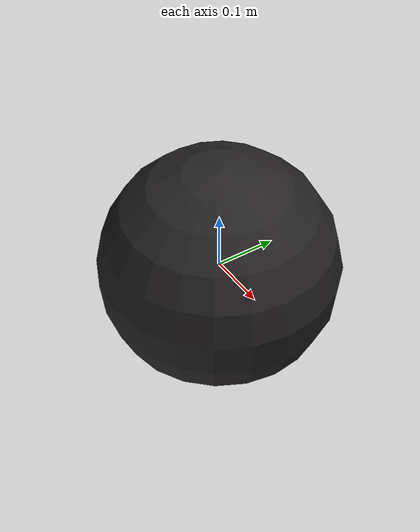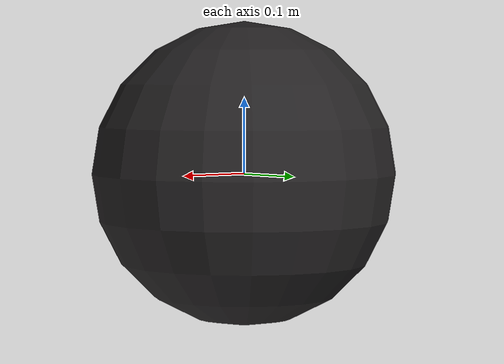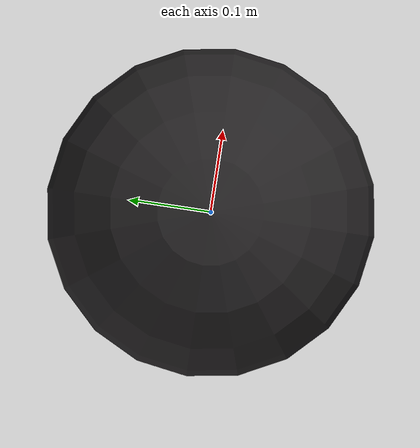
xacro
<?xml version="1.0"?>
<robot name="bowling_ball" xmlns:xacro="http://ros.org/wiki/xacro">

    <!-- Import all Gazebo-customization elements, including Gazebo colors -->
    <xacro:include filename="$(find pkg_gazebo)/urdf/bowling_ball_bot.gazebo" />

    <!-- Constants for robot -->
    <xacro:property name="radius" value="0.2"/>
    <xacro:property name="mass" value="8.0"/>

    <material name="gloss_black">
        <color rgba="${37/255} ${35/255} ${36/255} 1"/>
    </material>

    <link name="base_link">
        <visual>
            <geometry>
                <sphere radius="0.2"/>
            </geometry>
            <material name="gloss_black"/>
            <origin xyz="0.0 0.0 0.0" rpy="0.0 0.0 0.0"/>
        </visual>
        <collision>
            <geometry>
                <sphere radius="0.2"/>
            </geometry>
            <origin xyz="0.0 0.0 0.0" rpy="0.0 0.0 0.0"/>
        </collision>
        <inertial>
            <mass value="8.0" />
            <inertia ixx="0.03872" ixy="0.004" ixz="0.005" iyy="0.03872" iyz="0.003" izz="0.03872" />
        </inertial>
    </link>

    <link name="dummy">
        <inertial>
            <mass value="1e-04" />
            <inertia ixx="1e-06" ixy="0" ixz="0" iyy="1e-06" iyz="0" izz="1e-06" />
        </inertial>
    </link>

    <link name="rotx_link">
        <inertial>
            <mass value="1e-04" />
            <inertia ixx="1e-06" ixy="0" ixz="0" iyy="1e-06" iyz="0" izz="1e-06" />
        </inertial>
    </link>

    <link name="roty_link">
        <inertial>
            <mass value="1e-04" />
            <inertia ixx="1e-06" ixy="0" ixz="0" iyy="1e-06" iyz="0" izz="1e-06" />
        </inertial>
    </link>

    <link name="rotz_link">
        <inertial>
            <mass value="1e-04" />
            <inertia ixx="1e-06" ixy="0" ixz="0" iyy="1e-06" iyz="0" izz="1e-06" />
        </inertial>
    </link>

    <joint name="rotate_x" type="continuous">
        <parent link="base_link"/>
        <child link="rotx_link"/>
        <axis xyz="1 0 0"/>
    </joint>
    <joint name="rotate_y" type="continuous">
        <parent link="rotx_link"/>
        <child link="roty_link"/>
        <axis xyz="0 1 0"/>
    </joint>
    <joint name="rotate_z" type="continuous">
        <parent link="roty_link"/>
        <child link="rotz_link"/>
        <axis xyz="0 0 1"/>
    </joint>
    <joint name="fix" type="fixed">
        <parent link="rotz_link"/>
        <child link="dummy"/>
    </joint>

    <!-- This block provides movement of ball bot -->
    <transmission name="move_x">
        <type>transmission_interface/SimpleTransmission</type>
        <actuator name="move_x">
            <mechanicalReduction>1</mechanicalReduction>
            <hardwareInterface>EffortJointInterface</hardwareInterface>
        </actuator>
        <joint name="rotate_x">
            <hardwareInterface>hardware_interface/EffortJointInterface</hardwareInterface>
        </joint>
    </transmission>

    <transmission name="move_y">
        <type>transmission_interface/SimpleTransmission</type>
        <actuator name="move_y">
            <mechanicalReduction>1</mechanicalReduction>
            <hardwareInterface>EffortJointInterface</hardwareInterface>
        </actuator>
        <joint name="rotate_y">
            <hardwareInterface>hardware_interface/EffortJointInterface</hardwareInterface>
        </joint>
    </transmission>

    <transmission name="move_z">
        <type>transmission_interface/SimpleTransmission</type>
        <actuator name="move_z">
            <mechanicalReduction>1</mechanicalReduction>
            <hardwareInterface>EffortJointInterface</hardwareInterface>
        </actuator>
        <joint name="rotate_z">
            <hardwareInterface>hardware_interface/EffortJointInterface</hardwareInterface>
        </joint>
    </transmission>
</robot>
